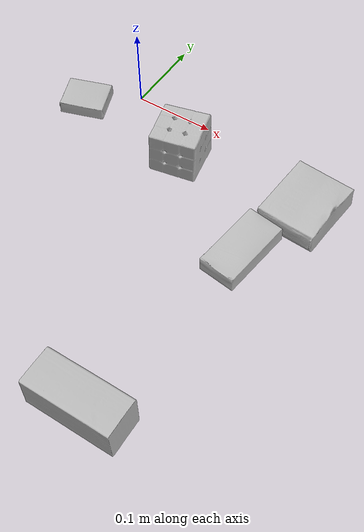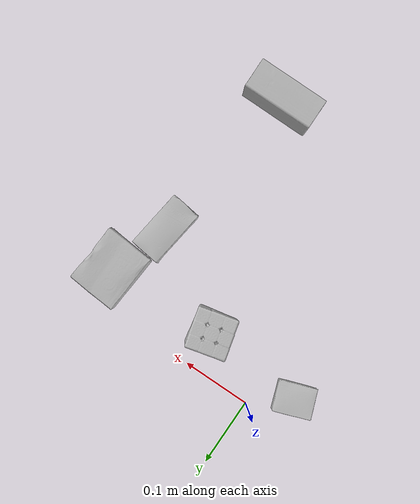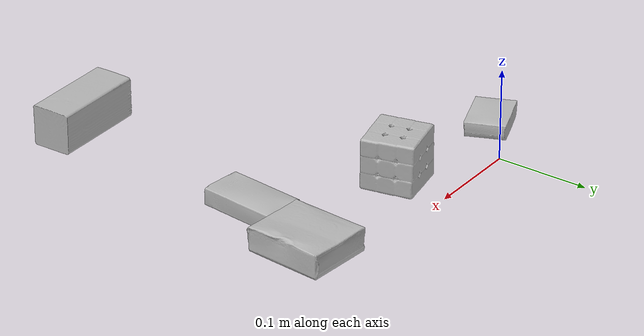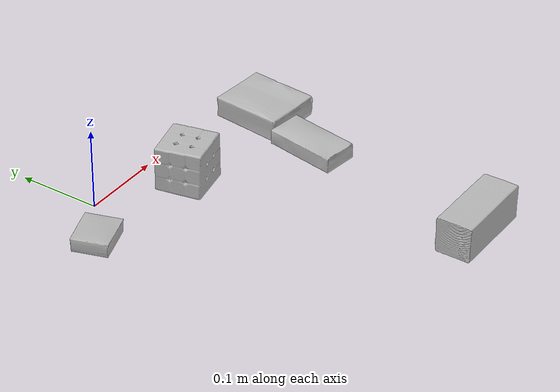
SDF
<sdf version="1.4">
  <world name="default">
    <light name="light1" type="point">
      <pose>0 0 1 0 0 0</pose>
      <diffuse>3 3 3 1</diffuse>
      <specular>3 3 3 1</specular>
    </light>
    <light name="light2" type="point">
      <pose>0 0.5 2 0 0 0</pose>
      <diffuse>1 1 1 1</diffuse>
      <specular>1 1 1 1</specular>
    </light>
    <light name="light3" type="point">
      <pose>0 0.5 2 0 0 0</pose>
      <diffuse>3 3 3 1</diffuse>
      <specular>3 3 3 1</specular>
    </light>
    <scene>
      <ambient>0.7 0.7 0.7</ambient>
    </scene>
    <model name="box1">
      <link name="link_box1">
        <collision name="default">
          <geometry>
            <mesh>
              <uri>model://gelatin_box/collision_meshes/collision.obj</uri>
              <scale>1.0 1.0 1.0</scale>
            </mesh>
          </geometry>
          <surface>
            <friction>
              <ode>
                <mu>0.5</mu>
                <mu2>0.5</mu2>
              </ode>
            </friction>
          <contact>
        <ode>
            <max_vel>0</max_vel>
            <min_depth>0.0001</min_depth>
            <kp>1e8</kp>
        </ode>
    </contact></surface>
        </collision>
        <visual name="default">
          <geometry>
            <mesh>
              <uri>model://gelatin_box/visual_meshes/visual.dae</uri>
              <scale>1.0 1.0 1.0</scale>
            </mesh>
          </geometry>
        </visual>
        <inertial>
          <mass>0.15228882431983948</mass>
          <pose>0.0004319618456065655 0.00011156871914863586 -0.0003640321083366871 -0.00105037218966889 -0.004755816826754503 0.0164405576082189</pose>
          <inertia>
            <ixx>0.00010750349</ixx>
            <iyy>7.678918e-05</iyy>
            <izz>0.00016364428</izz>
            <ixy>0</ixy>
            <ixz>0</ixz>
            <iyz>0</iyz>
          </inertia>
        </inertial>
      </link>
      <pose>0.2601960301399231 -0.05238092318177223 0.015168310143053532 0.005596644897061267 -0.007303649928891803 -0.09182183386950526</pose>
    </model>
    <model name="box2">
      <link name="link_box2">
        <collision name="default">
          <geometry>
            <mesh>
              <uri>model://rubiks_cube/collision_meshes/collision.obj</uri>
              <scale>1.0 1.0 1.0</scale>
            </mesh>
          </geometry>
          <surface>
            <friction>
              <ode>
                <mu>0.5</mu>
                <mu2>0.5</mu2>
              </ode>
            </friction>
          <contact>
        <ode>
            <max_vel>0</max_vel>
            <min_depth>0.0001</min_depth>
            <kp>1e8</kp>
        </ode>
    </contact></surface>
        </collision>
        <visual name="default">
          <geometry>
            <mesh>
              <uri>model://rubiks_cube/visual_meshes/visual.dae</uri>
              <scale>1.0 1.0 1.0</scale>
            </mesh>
          </geometry>
        </visual>
        <inertial>
          <mass>0.18699690699577332</mass>
          <pose>2.6721041649580002e-05 5.2569666877388954e-05 -7.264316082000732e-06 -0.054672785544912415 -0.09814058570479768 -0.03445363054661819</pose>
          <inertia>
            <ixx>0.00010332834</ixx>
            <iyy>0.00010284647</iyy>
            <izz>0.000104184575</izz>
            <ixy>0</ixy>
            <ixz>0</ixz>
            <iyz>0</iyz>
          </inertia>
        </inertial>
      </link>
      <pose>0.09799409657716751 -0.05796116590499878 0.028679000213742256 4.6521175758873635e-08 7.492425008914349e-08 1.8007268454189742</pose>
    </model>
    <model name="box3">
      <link name="link_box3">
        <collision name="default">
          <geometry>
            <mesh>
              <uri>model://pudding_box/collision_meshes/collision.obj</uri>
              <scale>0.5 0.5 0.5</scale>
            </mesh>
          </geometry>
          <surface>
            <friction>
              <ode>
                <mu>0.5</mu>
                <mu2>0.5</mu2>
              </ode>
            </friction>
          <contact>
        <ode>
            <max_vel>0</max_vel>
            <min_depth>0.0001</min_depth>
            <kp>1e8</kp>
        </ode>
    </contact></surface>
        </collision>
        <visual name="default">
          <geometry>
            <mesh>
              <uri>model://pudding_box/visual_meshes/visual.dae</uri>
              <scale>0.5 0.5 0.5</scale>
            </mesh>
          </geometry>
        </visual>
        <inertial>
          <mass>0.04129739850759506</mass>
          <pose>0.00024474109522998333 0.00040339428232982755 -0.0002594413817860186 0.005213100432551209 -0.006603796827212886 0.020079819580048088</pose>
          <inertia>
            <ixx>1.1671145e-05</ixx>
            <iyy>7.852431e-06</iyy>
            <izz>1.7235501e-05</izz>
            <ixy>0</ixy>
            <ixz>0</ixz>
            <iyz>0</iyz>
          </inertia>
        </inertial>
      </link>
      <pose>-0.0512860007584095 -0.04407355189323425 0.009862901642918587 0.02234853688983984 -0.011391670833448983 1.9183019086552495</pose>
    </model>
    <model name="box4">
      <link name="link_box4">
        <collision name="default">
          <geometry>
            <mesh>
              <uri>model://sugar_box/collision_meshes/collision.obj</uri>
              <scale>0.5 0.5 0.5</scale>
            </mesh>
          </geometry>
          <surface>
            <friction>
              <ode>
                <mu>0.5</mu>
                <mu2>0.5</mu2>
              </ode>
            </friction>
          <contact>
        <ode>
            <max_vel>0</max_vel>
            <min_depth>0.0001</min_depth>
            <kp>1e8</kp>
        </ode>
    </contact></surface>
        </collision>
        <visual name="default">
          <geometry>
            <mesh>
              <uri>model://sugar_box/visual_meshes/visual.dae</uri>
              <scale>0.5 0.5 0.5</scale>
            </mesh>
          </geometry>
        </visual>
        <inertial>
          <mass>0.09136254340410233</mass>
          <pose>0.0005171863595023751 1.924554817378521e-05 -0.00018182402709499002 -0.00040462606744182556 0.0010506635219056535 0.0026153790218759383</pose>
          <inertia>
            <ixx>1.9030753e-05</ixx>
            <iyy>6.15113e-05</iyy>
            <izz>7.363638e-05</izz>
            <ixy>0</ixy>
            <ixz>0</ixz>
            <iyz>0</iyz>
          </inertia>
        </inertial>
      </link>
      <pose>0.2292630821466446 -0.13946576416492462 0.011399303562939167 0.0007748431738073528 -0.02343311047400035 1.4324331346115176</pose>
    </model>
    <model name="box5">
      <link name="link_box5">
        <collision name="default">
          <geometry>
            <mesh>
              <uri>model://wood_block/collision_meshes/collision.obj</uri>
              <scale>0.5 0.5 0.5</scale>
            </mesh>
          </geometry>
          <surface>
            <friction>
              <ode>
                <mu>0.5</mu>
                <mu2>0.5</mu2>
              </ode>
            </friction>
          <contact>
        <ode>
            <max_vel>0</max_vel>
            <min_depth>0.0001</min_depth>
            <kp>1e8</kp>
        </ode>
    </contact></surface>
        </collision>
        <visual name="default">
          <geometry>
            <mesh>
              <uri>model://wood_block/visual_meshes/visual.dae</uri>
              <scale>0.5 0.5 0.5</scale>
            </mesh>
          </geometry>
        </visual>
        <inertial>
          <mass>0.2591090798377991</mass>
          <pose>-2.9066577553749084e-06 -0.00028540470520965755 0.00013204290007706732 -0.05220937491622274 -0.005192696068464721 -0.006861378365732138</pose>
          <inertia>
            <ixx>8.6681786e-05</ixx>
            <iyy>0.00027382775</iyy>
            <izz>0.0002728035</izz>
            <ixy>0</ixy>
            <ixz>0</ixz>
            <iyz>0</iyz>
          </inertia>
        </inertial>
      </link>
      <pose>0.19529125094413757 -0.3779347836971283 0.0226292684674263 -0.005208420993369657 0.0057185564702783255 -3.136342886389861</pose>
    </model>
  <physics type="ode">
      <max_contacts>50</max_contacts>
      <ode>
        <solver>
          <type>quick</type>
          <iters>75</iters>
        </solver>
        <constraints>
          <contact_max_correcting_vel>0</contact_max_correcting_vel>
          <contact_surface_layer>0</contact_surface_layer>
        </constraints>
      </ode>
    </physics></world>
</sdf>
